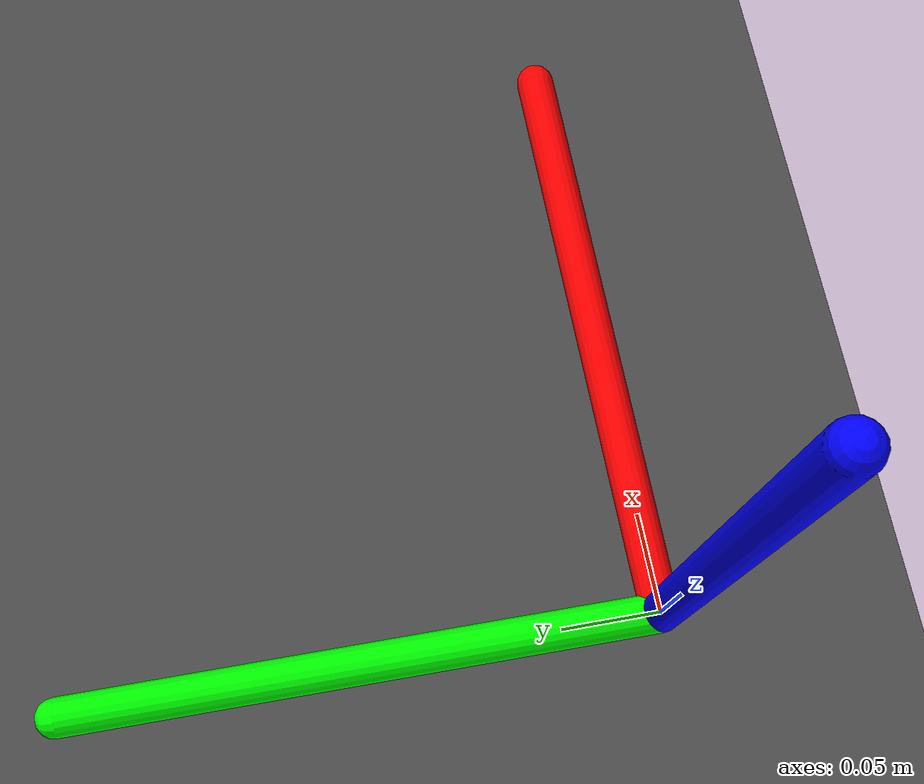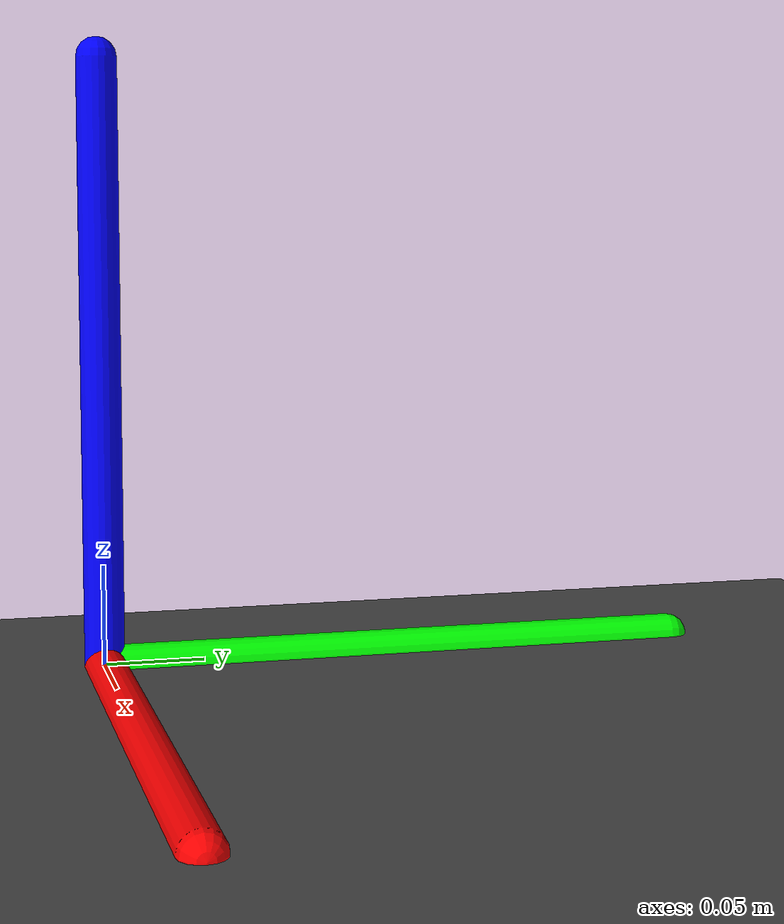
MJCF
<mujoco model="panda scene">

  <compiler texturedir="background"/>

  <statistic center="0.3 0 0.4" extent="1"/>

  <option timestep="0.005" iterations="5" ls_iterations="8" integrator="implicitfast" cone="elliptic">
    <flag eulerdamp="disable"/>
  </option>

  <visual>
    <global offwidth="1280" offheight="720"/>
  </visual>

  <custom>
    <numeric data="12" name="max_contact_points"/>
  </custom>

  <visual>
    <headlight active="1" diffuse="0.4 0.4 0.4" ambient="0.25 0.25 0.25" specular="0 0 0"/>
    <rgba haze="0.15 0.25 0.35 1"/>
    <global azimuth="120" elevation="-20"/>
  </visual>

  <asset>
    <texture type="skybox" builtin="gradient" rgb1="0.3 0.5 0.7" rgb2="0 0 0" width="512" height="3072"/>
    <!-- asphalt floor loaded from background/asphalt.png (relative to the scene) -->
    <texture type="2d" name="groundplane" file="background/asphalt.png"/>
    <material name="groundplane" texture="groundplane" texuniform="true" texrepeat="5 5" reflectance="0.05"/>
  </asset>

  <worldbody>
    <light name="light_main" pos="0.5 0.0 1.8"
           diffuse="0.8 0.8 0.8" specular="0.2 0.2 0.2" ambient="0 0 0"
           directional="false" castshadow="true" cutoff="75" exponent="1"/>
    <light name="light_fill" pos="1.2 0.5 1.0"
           diffuse="0.25 0.25 0.25" specular="0 0 0" ambient="0 0 0"
           directional="false" castshadow="false"/>
    <geom name="floor" size="0 0 0.05" type="plane" material="groundplane" contype="1"/>

    <!-- X axis (red) -->
    <geom type="capsule" fromto="0 0 0   0.3 0 0" size="0.01" rgba="1 0 0 1"/>
    <!-- Y axis (green) -->
    <geom type="capsule" fromto="0 0 0   0 0.3 0" size="0.01" rgba="0 1 0 1"/>
    <!-- Z axis (blue) -->
    <geom type="capsule" fromto="0 0 0   0 0 0.3" size="0.01" rgba="0 0 1 1"/>

  </worldbody>
</mujoco>
